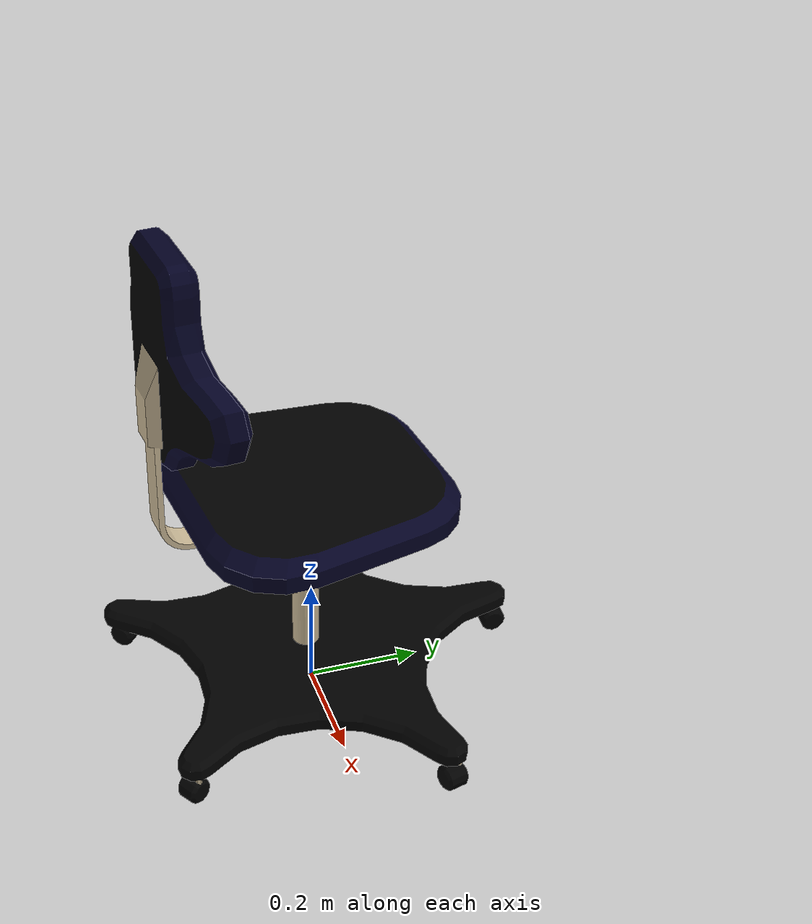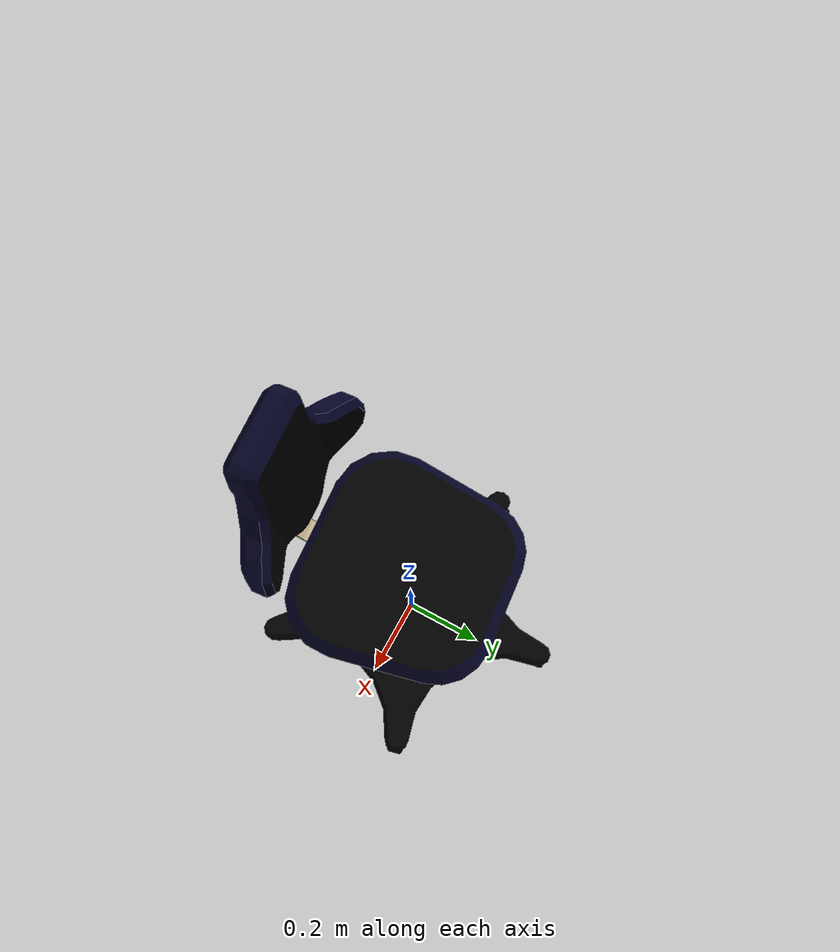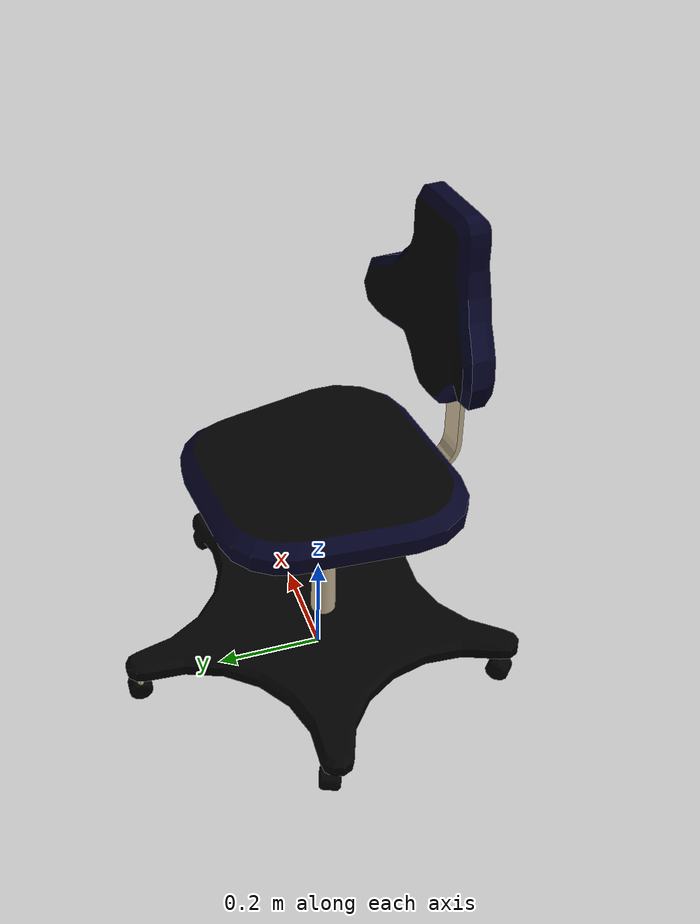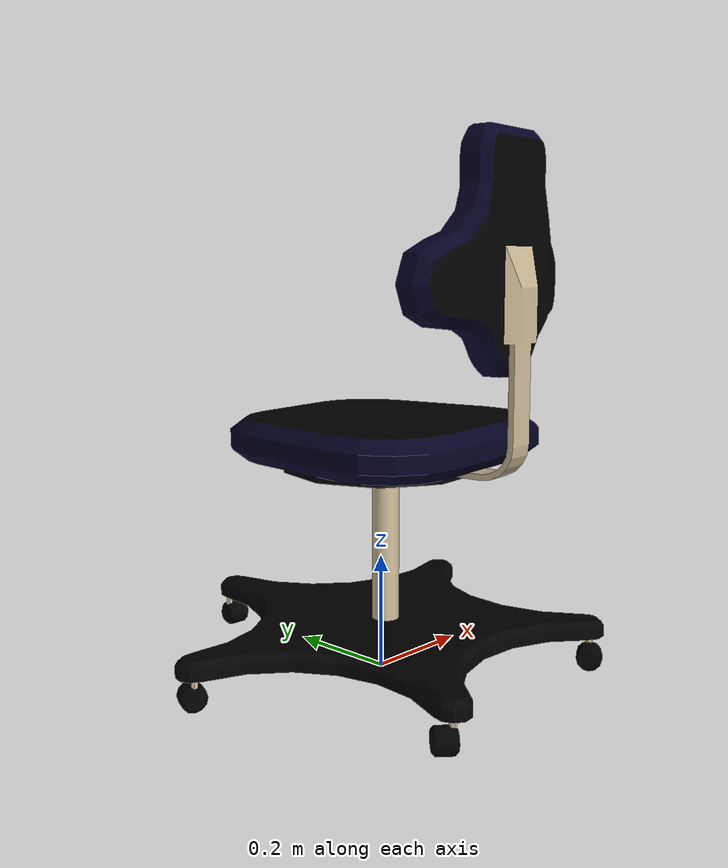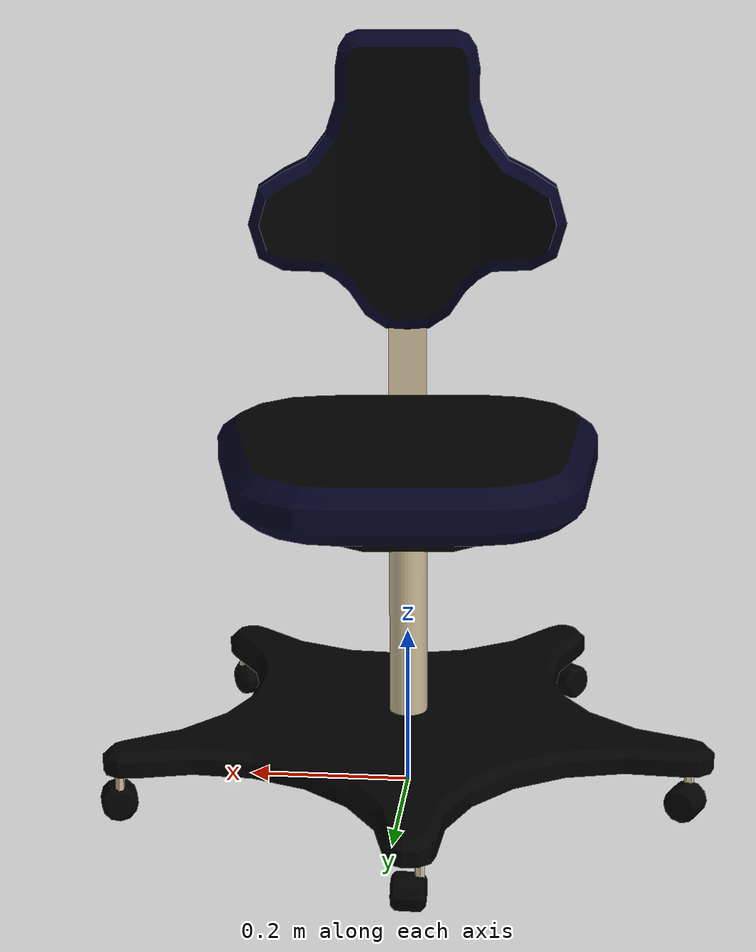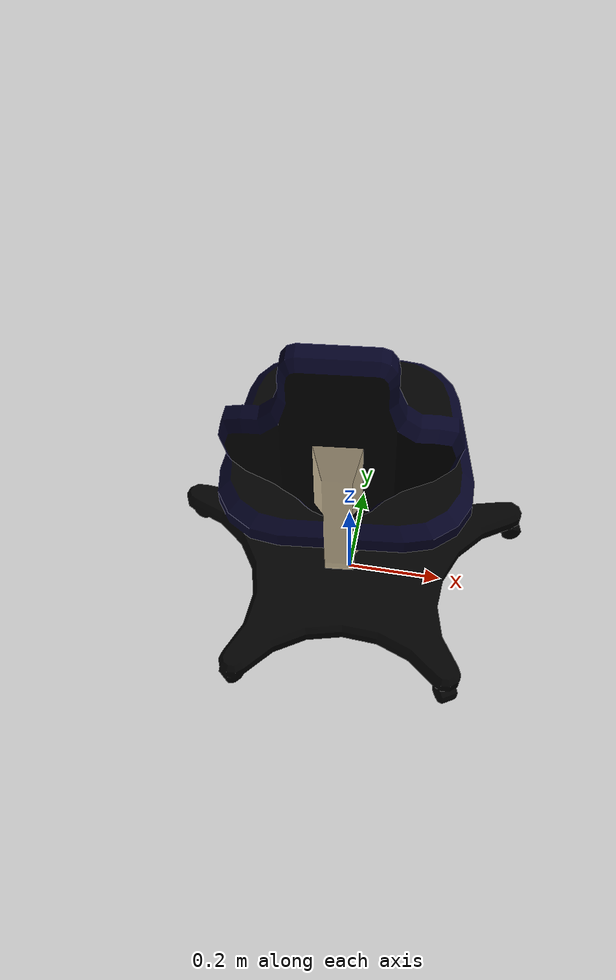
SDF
<?xml version='1.0' ?>
<sdf version='1.6'>
  <model name='Silla_gaming'>
    <static>true</static>
    <link name='link'>
      <collision name='collision'>
        <geometry>
          <mesh>
            <uri>model://silla_gaming/meshes/collision/collision.stl</uri>
          </mesh>
        </geometry>
      </collision>
      <visual name='visual'>
        <geometry>
          <mesh>
            <uri>model://silla_gaming/meshes/visual/visual.dae</uri>
          </mesh>
        </geometry>
      </visual>
    </link>
  </model>
</sdf>
